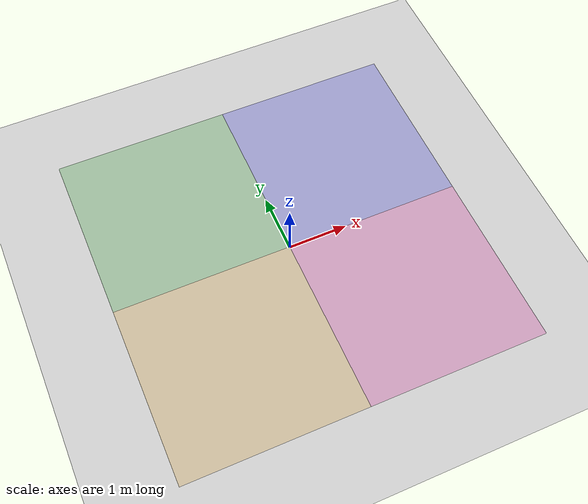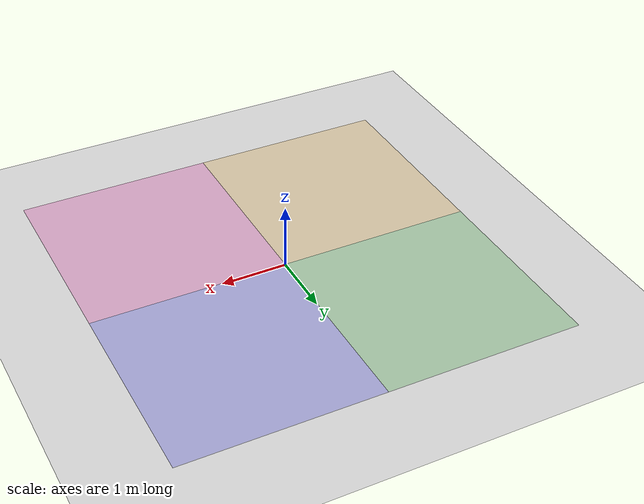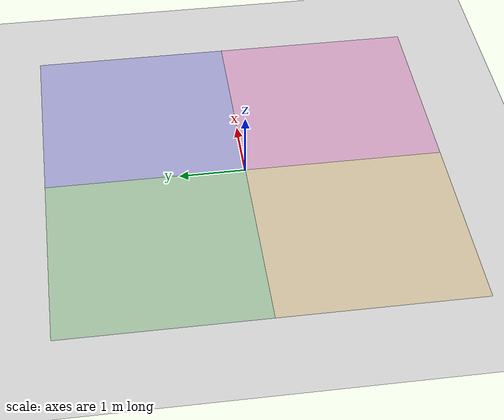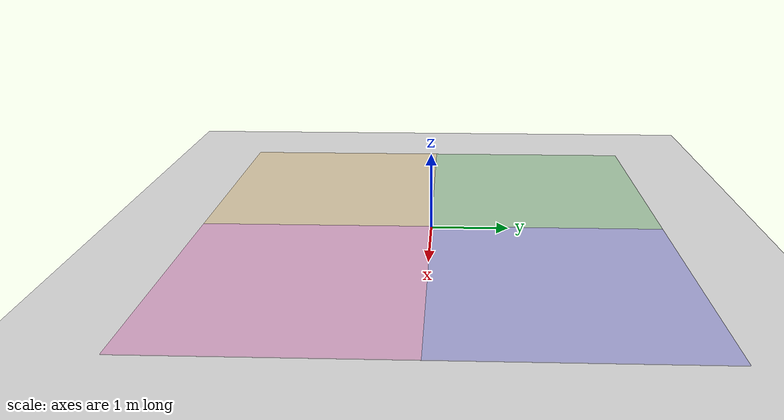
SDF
<sdf version="1.9">
 <world name="flexcell_world">
  <physics name="1ms" type="ignored">
   <max_step_size>0.001</max_step_size>
   <real_time_factor>1.0</real_time_factor>
  </physics>
  <plugin filename="gz-sim-physics-system" name="gz::sim::systems::Physics"/>
  <plugin filename="gz-sim-scene-broadcaster-system" name="gz::sim::systems::SceneBroadcaster"/>
  <plugin filename="gz-sim-user-commands-system" name="gz::sim::systems::UserCommands"/>
  <plugin filename="gz-sim-sensors-system" name="gz::sim::systems::Sensors">
   <render_engine>ogre2</render_engine>
  </plugin>
  <model name="ground_plane">
   <static>true</static>
   <link name="link">
    <collision name="collision">
     <geometry><plane><normal>0 0 1</normal><size>20 20</size></plane></geometry>
    </collision>
    <visual name="visual">
     <geometry><plane><normal>0 0 1</normal><size>20 20</size></plane></geometry>
     <material><ambient>0.8 0.8 0.8 1</ambient><diffuse>0.8 0.8 0.8 1</diffuse></material>
    </visual>
   </link>
  </model>
  <model name="zone_A">
   <static>true</static>
   <pose>-1.5 1.5 0.01 0 0 0</pose>
   <link name="link">
    <visual name="v">
     <geometry><box><size>3 3 0.01</size></box></geometry>
     <material><ambient>0.2 0.6 0.2 0.3</ambient></material>
    </visual>
   </link>
  </model>
  <model name="zone_B">
   <static>true</static>
   <pose>1.5 1.5 0.01 0 0 0</pose>
   <link name="link">
    <visual name="v">
     <geometry><box><size>3 3 0.01</size></box></geometry>
     <material><ambient>0.2 0.2 0.8 0.3</ambient></material>
    </visual>
   </link>
  </model>
  <model name="zone_C">
   <static>true</static>
   <pose>-1.5 -1.5 0.01 0 0 0</pose>
   <link name="link">
    <visual name="v">
     <geometry><box><size>3 3 0.01</size></box></geometry>
     <material><ambient>0.8 0.6 0.2 0.3</ambient></material>
    </visual>
   </link>
  </model>
  <model name="zone_D">
   <static>true</static>
   <pose>1.5 -1.5 0.01 0 0 0</pose>
   <link name="link">
    <visual name="v">
     <geometry><box><size>3 3 0.01</size></box></geometry>
     <material><ambient>0.8 0.2 0.6 0.3</ambient></material>
    </visual>
   </link>
  </model>
  <light name="sun" type="directional">
   <pose>0 0 10 0 0 0</pose>
   <diffuse>0.8 0.8 0.8 1</diffuse>
   <specular>0.2 0.2 0.2 1</specular>
   <direction>-0.5 0.1 -0.9</direction>
  </light>
 </world>
</sdf>
